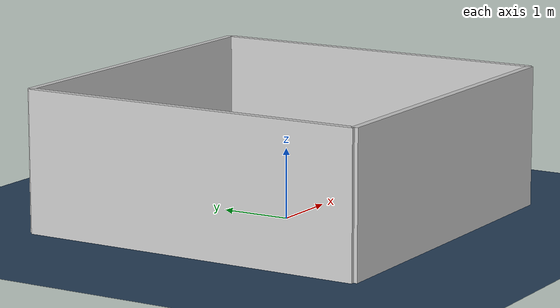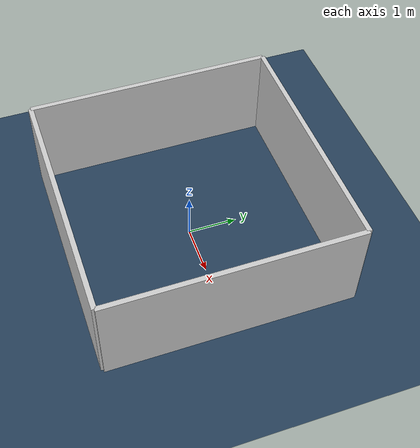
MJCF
<mujoco model="room_arena">
  <statistic center="0 0 1" extent="5"/>

  <visual>
    <headlight diffuse="0.6 0.6 0.6" ambient="0.3 0.3 0.3" specular="0 0 0"/>
    <rgba haze="0.15 0.25 0.35 1"/>
    <global azimuth="120" elevation="-20"/>
  </visual>

  <asset>
    <texture type="skybox" builtin="gradient" rgb1="0.3 0.5 0.7" rgb2="0 0 0" width="512" height="3072"/>
    <texture type="2d" name="groundplane" builtin="checker" mark="edge" rgb1="0.2 0.3 0.4" rgb2="0.1 0.2 0.3"
      markrgb="0.8 0.8 0.8" width="300" height="300"/>
    <material name="groundplane" texture="groundplane" texuniform="true" texrepeat="5 5" reflectance="0.2"/>
    <!-- 벽에 사용할 재질 추가 -->
    <material name="wall_material" rgba="0.8 0.8 0.8 1"/>
  </asset>

  <worldbody>
    <!-- 바닥 -->
    <geom name="floor" size="0 0 0.05" type="plane" material="groundplane"/>
    <!-- 조명 -->
    <light diffuse=".8 .8 .8" dir="0 -.15 -1" directional="false" pos="1 1 4.0" specular="0.3 0.3 0.3" castshadow="false"/>
    <light diffuse=".8 .8 .8" dir="0 -.15 -1" directional="false" pos="-2.5 -2.5 4.0" specular="0.3 0.3 0.3" castshadow="false"/>
    <!-- 카메라 -->
    <camera mode="fixed" name="frontview" pos="12 0 2" quat="0.7071 0 0.7071 0"/>
    <camera mode="fixed" name="birdview" pos="0 0 10" quat="1 0 0 0"/>
    <!-- 벽 추가 -->
    <!-- 앞쪽 벽 -->
    <geom name="front_wall" type="box" size="2.5 0.05 1" pos="0 2.5 1" material="wall_material"/>
    <!-- 뒤쪽 벽 -->
    <geom name="back_wall" type="box" size="2.5 0.05 1" pos="0 -2.5 1" material="wall_material"/>
    <!-- 왼쪽 벽 -->
    <geom name="left_wall" type="box" size="0.05 2.5 1" pos="-2.5 0 1" material="wall_material"/>
    <!-- 오른쪽 벽 -->
    <geom name="right_wall" type="box" size="0.05 2.5 1" pos="2.5 0 1" material="wall_material"/>
  </worldbody>
</mujoco>
